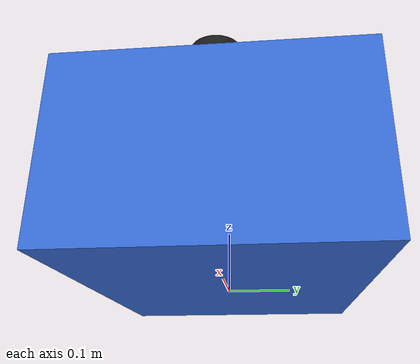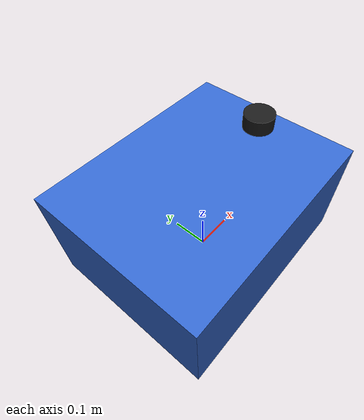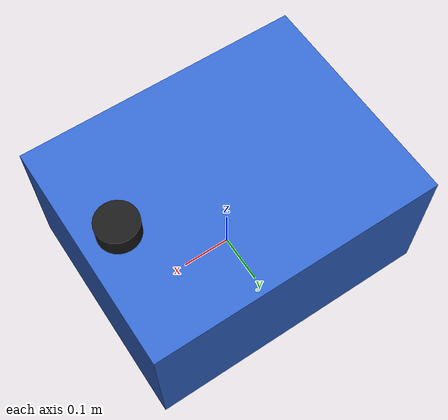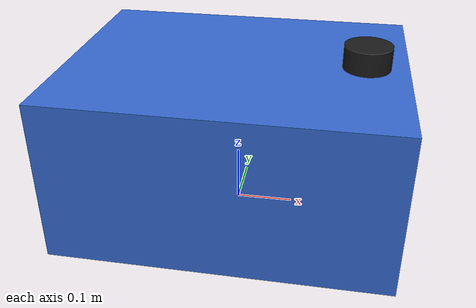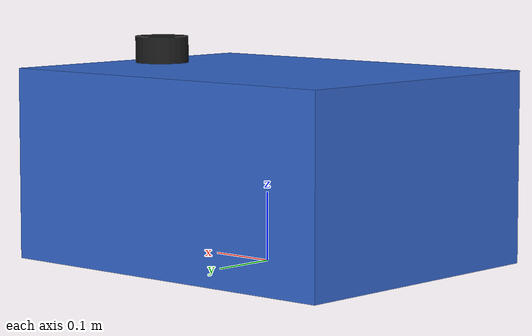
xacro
<?xml version="1.0"?>
<robot name="agv_nav" xmlns:xacro="http://www.ros.org/wiki/xacro">
  <xacro:arg name="robot_ns" default=""/>

  <!-- base_footprint -->
  <link name="base_footprint"/>

  <!-- base_link: 简单长方体（0.57×0.45×0.28m），蓝色 -->
  <link name="base_link">
    <visual>
      <origin xyz="0 0 0.14" rpy="0 0 0"/>
      <geometry><box size="0.57 0.45 0.28"/></geometry>
      <material name="agv_blue"><color rgba="0.2 0.4 0.8 1.0"/></material>
    </visual>
    <collision>
      <origin xyz="0 0 0.14" rpy="0 0 0"/>
      <geometry><box size="0.57 0.45 0.28"/></geometry>
    </collision>
    <inertial>
      <mass value="20.0"/>
      <inertia ixx="0.5" ixy="0" ixz="0" iyy="0.5" iyz="0" izz="0.5"/>
    </inertial>
  </link>
  <joint name="base_joint" type="fixed">
    <parent link="base_footprint"/>
    <child link="base_link"/>
    <origin xyz="0 0 0" rpy="0 0 0"/>
  </joint>

  <!-- laser link: 小黑圆柱 -->
  <link name="laser">
    <visual>
      <origin xyz="0 0 0" rpy="0 0 0"/>
      <geometry><cylinder radius="0.04" length="0.04"/></geometry>
      <material name="agv_black"><color rgba="0.1 0.1 0.1 1.0"/></material>
    </visual>
    <collision>
      <geometry><cylinder radius="0.04" length="0.04"/></geometry>
    </collision>
    <inertial>
      <mass value="0.1"/>
      <inertia ixx="0.001" ixy="0" ixz="0" iyy="0.001" iyz="0" izz="0.001"/>
    </inertial>
  </link>
  <joint name="laser_joint" type="fixed">
    <parent link="base_link"/>
    <child link="laser"/>
    <origin xyz="0.215 0 0.30" rpy="0 0 3.1415926"/>
  </joint>

  <!-- planar move 插件 -->
  <gazebo>
    <plugin name="planar_controller" filename="libgazebo_ros_planar_move.so">
      <robotNamespace>$(arg robot_ns)</robotNamespace>
      <commandTopic>cmd_vel</commandTopic>
      <odometryTopic>odom</odometryTopic>
      <odometryFrame>odom</odometryFrame>
      <odometryRate>20.0</odometryRate>
      <robotBaseFrame>base_footprint</robotBaseFrame>
      <broadcastTF>false</broadcastTF>
    </plugin>
  </gazebo>

  <!-- 激光雷达传感器 -->
  <gazebo reference="laser">
    <sensor type="ray" name="rplidar_sensor">
      <pose>0 0 0.02 0 0 0</pose>
      <visualize>false</visualize>
      <update_rate>10</update_rate>
      <ray>
        <scan>
          <horizontal>
            <samples>360</samples>
            <resolution>1</resolution>
            <min_angle>-3.14159265</min_angle>
            <max_angle>3.14159265</max_angle>
          </horizontal>
        </scan>
        <range>
          <min>0.1</min>
          <max>10.0</max>
        </range>
      </ray>
      <plugin name="rplidar_ros_controller" filename="libgazebo_ros_laser.so">
        <robotNamespace>$(arg robot_ns)</robotNamespace>
        <topicName>scan_raw</topicName>
        <frameName>laser</frameName>
      </plugin>
    </sensor>
  </gazebo>

  <gazebo reference="base_link">
    <material>Gazebo/Blue</material>
  </gazebo>

</robot>
